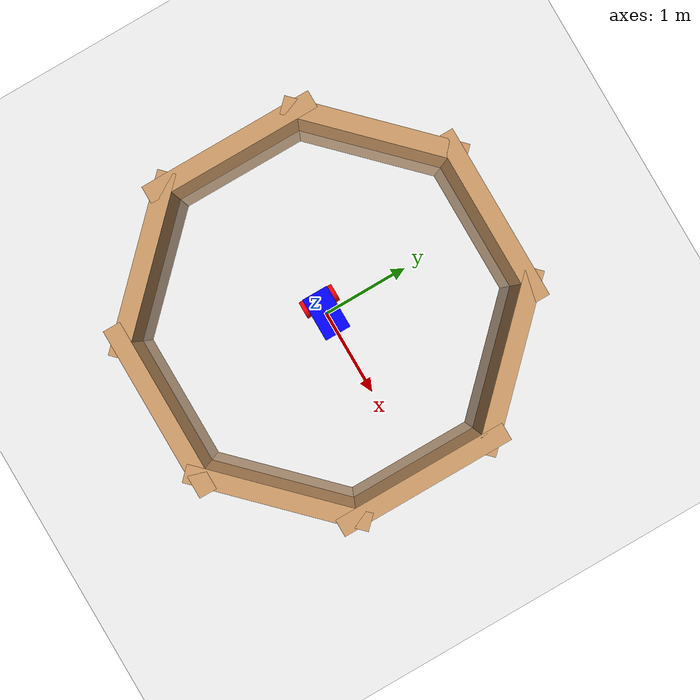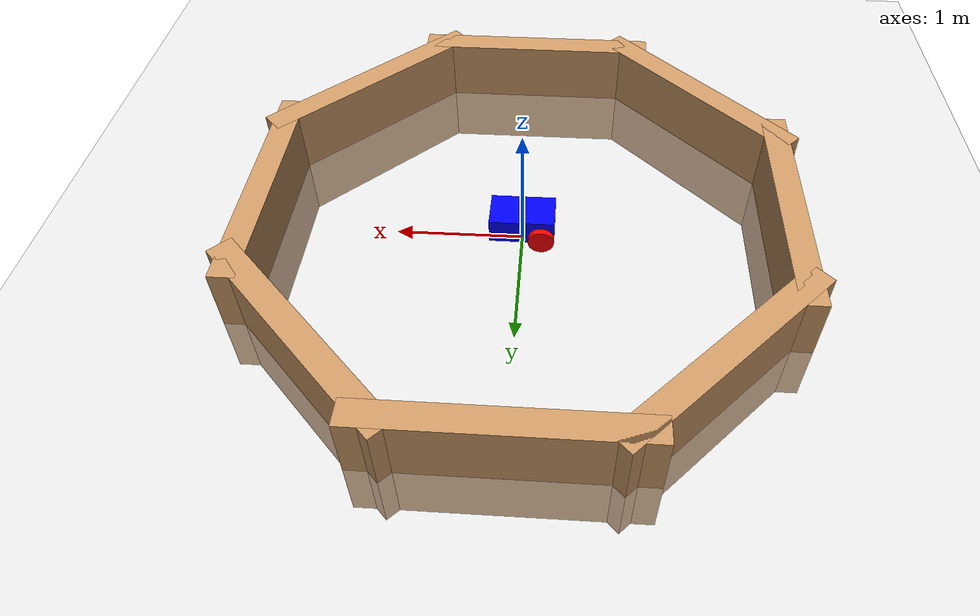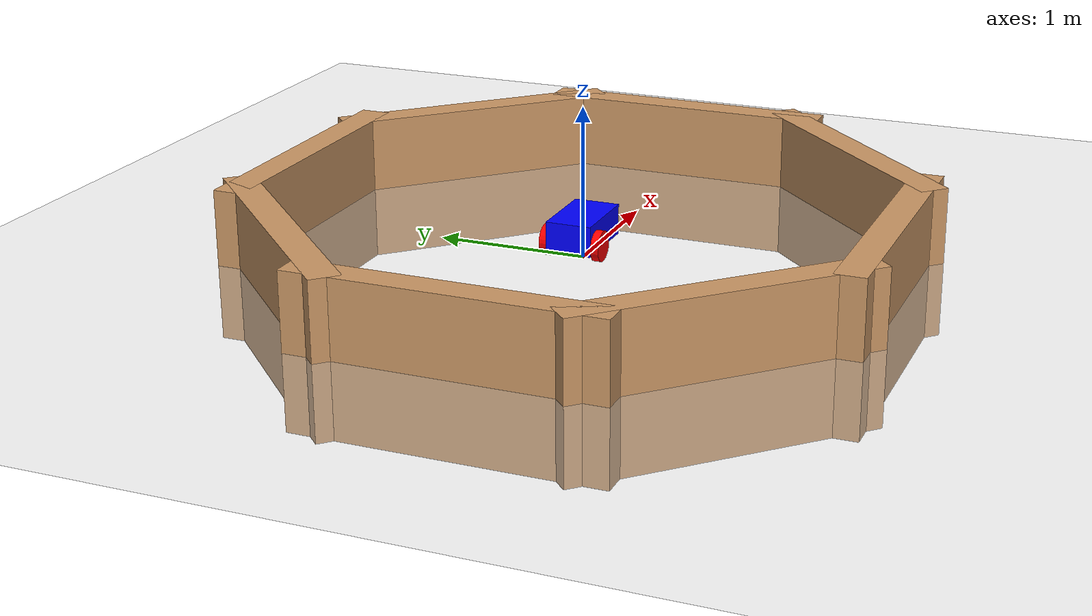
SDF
<?xml version="1.0"?>
<sdf version="1.6">

  <world name="default">
    <physics name="1ms" type="ignored">
        <max_step_size>0.001</max_step_size>
        <real_time_factor>1.0</real_time_factor>
    </physics>
    <plugin
        filename="gz-sim-physics-system"
        name="gz::sim::systems::Physics">
    </plugin>
    <plugin
        filename="gz-sim-user-commands-system"
        name="gz::sim::systems::UserCommands">
    </plugin>
    <plugin
        filename="gz-sim-scene-broadcaster-system"
        name="gz::sim::systems::SceneBroadcaster">
    </plugin>
    <include>
      <uri>model://ground_plane</uri>
      <name>ground_plane</name>
      <pose>0 0 0 0 0 0</pose>
    </include>
  <include>
    <uri>model://simple_diff_bot</uri>
    <name>simple_diff_bot</name>
    <pose>0 0 0.1 0 0 0</pose>
  </include>
  <!-- Surrounding walls -->
  <include>
    <uri>model://wall</uri>
    <name>wall_north</name>
    <pose>0 2 0 0 0 0</pose>
  </include>
  <include>
    <uri>model://wall</uri>
    <name>wall_northeast</name>
    <pose>1.4 1.4 0 0 0 2.3562</pose>
  </include>
  <include>
    <uri>model://wall</uri>
    <name>wall_east</name>
    <pose>2 0 0 0 0 1.5708</pose>
  </include>
  <include>
    <uri>model://wall</uri>
    <name>wall_southeast</name>
    <pose>1.4 -1.4 0 0 0 0.7854</pose>
  </include>
  <include>
    <uri>model://wall</uri>
    <name>wall_south</name>
    <pose>0 -2 0 0 0 0</pose>
  </include>
  <include>
    <uri>model://wall</uri>
    <name>wall_southwest</name>
    <pose>-1.4 -1.4 0 0 0 2.3562</pose>
  </include>
  <include>
    <uri>model://wall</uri>
    <name>wall_west</name>
    <pose>-2 0 0 0 0 1.5708</pose>
  </include>
  <include>
    <uri>model://wall</uri>
    <name>wall_northwest</name>
    <pose>-1.4 1.4 0 0 0 0.7854</pose>
  </include>

  </world>
</sdf>

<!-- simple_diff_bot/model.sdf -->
<sdf version="1.6">
  <model name="simple_diff_bot" canonical_link='chassis'>
    <link name="chassis">
      <pose>0 0 0.1 0 0 0</pose>
      <inertial>
        <mass>5.0</mass>
        <inertia>
          <ixx>1</ixx>
          <iyy>1</iyy>
          <izz>1</izz>
        </inertia>
      </inertial>
      <collision name="collision">
        <geometry>
          <box>
            <size>0.5 0.3 0.2</size>
          </box>
        </geometry>
      </collision>
      <visual name="visual">
        <geometry>
          <box>
            <size>0.5 0.3 0.2</size>
          </box>
        </geometry>
        <material>
          <ambient>0 0 1 1</ambient>
          <diffuse>0 0 1 1</diffuse>
        </material>
      </visual>
      <sensor name="lidar" type="gpu_ray">
        <!-- Place lidar on top of the chassis -->
        <pose>0 0 0.15 0 0 0</pose>
        <update_rate>10</update_rate>
        <ray>
          <scan>
            <horizontal>
              <samples>360</samples>
              <resolution>1</resolution>

              <min_angle>-3.14159</min_angle>
              <max_angle>3.14159</max_angle>
            </horizontal>
          </scan>
          <range>
            <min>0.1</min>
            <max>10.0</max>
          </range>
        </ray>
      </sensor>
    </link>

    <!--Left wheel-->
    <link name='left_wheel'>
        <pose relative_to="chassis">-0.15 0.175 -0.05 -1.5707 0 0</pose> <!--angles are in radian-->
        <inertial>
            <mass>1</mass>
            <inertia>
                <ixx>0.043333</ixx>
                <ixy>0</ixy>
                <ixz>0</ixz>
                <iyy>0.043333</iyy>
                <iyz>0</iyz>
                <izz>0.08</izz>
            </inertia>
        </inertial>
        <visual name='visual'>
            <geometry>
                <cylinder>
                    <radius>0.1</radius>
                    <length>0.05</length>
                </cylinder>
            </geometry>
            <material>
                <ambient>1.0 0.0 0.0 1</ambient>
                <diffuse>1.0 0.0 0.0 1</diffuse>
                <specular>1.0 0.0 0.0 1</specular>
            </material>
        </visual>
        <collision name='collision'>
            <geometry>
                <cylinder>
                    <radius>0.1</radius>
                    <length>0.05</length>
                </cylinder>
            </geometry>
        </collision>
    </link>

    <!--The same as left wheel but with different position-->
    <link name='right_wheel'>
        <pose relative_to="chassis">-0.15 -0.175 -0.05 -1.5707 0 0</pose> <!--angles are in radian-->
        <inertial>
            <mass>1</mass>
            <inertia>
                <ixx>0.043333</ixx>
                <ixy>0</ixy>
                <ixz>0</ixz>
                <iyy>0.043333</iyy>
                <iyz>0</iyz>
                <izz>0.08</izz>
            </inertia>
        </inertial>
        <visual name='visual'>
            <geometry>
                <cylinder>
                    <radius>0.1</radius>
                    <length>0.05</length>
                </cylinder>
            </geometry>
            <material>
                <ambient>1.0 0.0 0.0 1</ambient>
                <diffuse>1.0 0.0 0.0 1</diffuse>
                <specular>1.0 0.0 0.0 1</specular>
            </material>
        </visual>
        <collision name='collision'>
            <geometry>
                <cylinder>
                    <radius>0.1</radius>
                    <length>0.05</length>
                </cylinder>
            </geometry>
        </collision>
    </link>
    <!--arbitrary frame-->
    <frame name="caster_frame" attached_to='chassis'>
        <pose>0.15 0 -0.1 0 0 0</pose>
    </frame>

    <!--caster wheel-->
    <link name='caster'>
        <pose relative_to='caster_frame'/>
        <inertial>
            <mass>1</mass>
            <inertia>
                <ixx>0.016</ixx>
                <ixy>0</ixy>
                <ixz>0</ixz>
                <iyy>0.016</iyy>
                <iyz>0</iyz>
                <izz>0.016</izz>
            </inertia>
        </inertial>
        <visual name='visual'>
            <geometry>
                <sphere>
                    <radius>0.05</radius>
                </sphere>
            </geometry>
            <material>
                <ambient>0.0 1 0.0 1</ambient>
                <diffuse>0.0 1 0.0 1</diffuse>
                <specular>0.0 1 0.0 1</specular>
            </material>
        </visual>
        <collision name='collision'>
            <geometry>
                <sphere>
                    <radius>0.05</radius>
                </sphere>
            </geometry>
        </collision>
    </link>

     <!--left wheel joint-->
    <joint name='left_wheel_joint' type='revolute'>
        <pose relative_to='left_wheel'/>
        <parent>chassis</parent>
        <child>left_wheel</child>
        <axis>
            <xyz expressed_in='__model__'>0 1 0</xyz> <!--can be descired to any frame or even arbitrary frames-->
            <limit>
                <lower>-1.79769e+308</lower>    <!--negative infinity-->
                <upper>1.79769e+308</upper>     <!--positive infinity-->
            </limit>
        </axis>
    </joint>

    <!--right wheel joint-->
    <joint name='right_wheel_joint' type='revolute'>
        <pose relative_to='right_wheel'/>
        <parent>chassis</parent>
        <child>right_wheel</child>
        <axis>
            <xyz expressed_in='__model__'>0 1 0</xyz>
            <limit>
                <lower>-1.79769e+308</lower>    <!--negative infinity-->
                <upper>1.79769e+308</upper>     <!--positive infinity-->
            </limit>
        </axis>
    </joint>

    <!--caster wheel joint--> <!--pose defult value is the child-->
    <joint name='caster_wheel' type='ball'>
        <parent>chassis</parent>
        <child>caster</child>
    </joint>

    <plugin name="diff_drive" filename="libignition-gazebo-diff-drive-system.so">
      <left_joint>left_wheel_joint</left_joint>
      <right_joint>right_wheel_joint</right_joint>
      <wheel_separation>0.3</wheel_separation>
      <wheel_radius>0.1</wheel_radius>
      <odom_publish_frequency>30</odom_publish_frequency>
      <topic>cmd_vel</topic>
    </plugin>
  </model>
</sdf>

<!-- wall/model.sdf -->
<sdf version="1.6">
  <model name="wall">
    <static>true</static>
    <link name="link">
      <collision name="collision">
        <geometry>
          <box>
            <size>2 0.1 1</size>
          </box>
        </geometry>
      </collision>
      <visual name="visual">
        <geometry>
          <box>
            <size>2 0.2 1</size>
          </box>
        </geometry>
        <material>
          <ambient>0.8 0.6 0.4 1</ambient>
          <diffuse>0.8 0.6 0.4 1</diffuse>
        </material>
      </visual>
    </link>
  </model>
</sdf>
